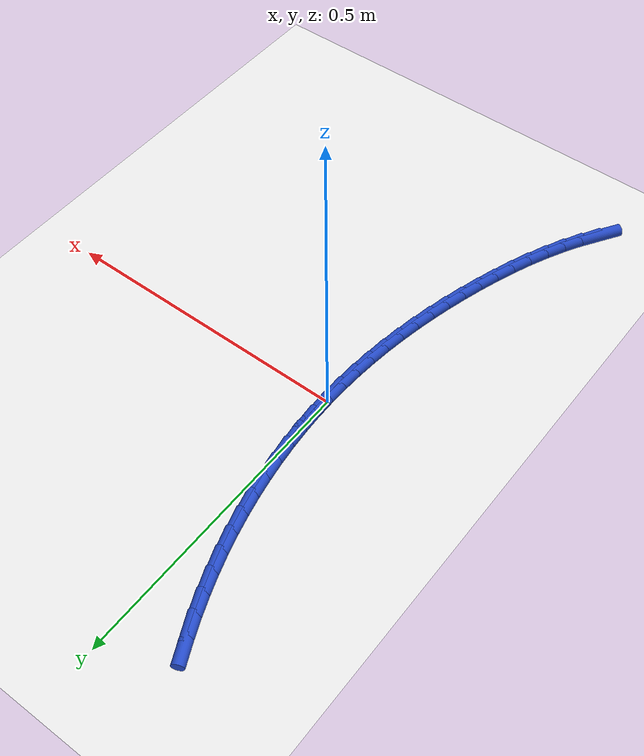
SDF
<sdf version="1.6">
 <world name="default">
  <model name="ground_plane">
   <static>1</static>
   <link name="link">
    <collision name="collision">
     <geometry><plane><normal>0 0 1</normal><size>100 100</size></plane></geometry>
     <surface><friction><ode><mu>100</mu><mu2>50</mu2></ode></friction></surface>
    </collision>
    <visual name="visual">
     <cast_shadows>0</cast_shadows>
     <geometry><plane><normal>0 0 1</normal><size>100 100</size></plane></geometry>
     <material>
      <script><uri>file://media/materials/scripts/gazebo.material</uri><name>Gazebo/WhiteGlow</name></script>
     </material>
    </visual>
   </link>
  </model>
  <model name="line">
   <link name="link_0">
    <pose>3.469446951953614e-18 -4.85722573273506e-17 0.01 0 1.57 -1.557743112268379</pose>
    <collision name="collision">
     <geometry><cylinder><radius>0.01</radius><length>0.08</length></cylinder></geometry>
    </collision>
    <visual name="visual">
     <material>
      <script><name>Gazebo/Blue</name><uri>file://media/materials/scripts/gazebo.material</uri></script>
     </material>
     <geometry><cylinder><radius>0.01</radius><length>0.08</length></cylinder></geometry>
    </visual>
   </link>
   <link name="link_1">
    <pose>-0.0004305091601614278 0.03297921044958965 0.01 0 1.57 -1.5230656228391661</pose>
    <collision name="collision">
     <geometry><cylinder><radius>0.01</radius><length>0.08</length></cylinder></geometry>
    </collision>
    <visual name="visual">
     <material>
      <script><name>Gazebo/Blue</name><uri>file://media/materials/scripts/gazebo.material</uri></script>
     </material>
     <geometry><cylinder><radius>0.01</radius><length>0.08</length></cylinder></geometry>
    </visual>
   </link>
   <link name="link_2">
    <pose>-0.0020077572388519137 0.06599883918657329 0.01 0 1.57 -1.4888375087633177</pose>
    <collision name="collision">
     <geometry><cylinder><radius>0.01</radius><length>0.08</length></cylinder></geometry>
    </collision>
    <visual name="visual">
     <material>
      <script><name>Gazebo/Blue</name><uri>file://media/materials/scripts/gazebo.material</uri></script>
     </material>
     <geometry><cylinder><radius>0.01</radius><length>0.08</length></cylinder></geometry>
    </visual>
   </link>
   <link name="link_3">
    <pose>-0.004718978539279356 0.09900502444685318 0.01 0 1.57 -1.4549674211429733</pose>
    <collision name="collision">
     <geometry><cylinder><radius>0.01</radius><length>0.08</length></cylinder></geometry>
    </collision>
    <visual name="visual">
     <material>
      <script><name>Gazebo/Blue</name><uri>file://media/materials/scripts/gazebo.material</uri></script>
     </material>
     <geometry><cylinder><radius>0.01</radius><length>0.08</length></cylinder></geometry>
    </visual>
   </link>
   <link name="link_4">
    <pose>-0.008551407364651669 0.1319439044663319 0.01 0 1.57 -1.4213636399968868</pose>
    <collision name="collision">
     <geometry><cylinder><radius>0.01</radius><length>0.08</length></cylinder></geometry>
    </collision>
    <visual name="visual">
     <material>
      <script><name>Gazebo/Blue</name><uri>file://media/materials/scripts/gazebo.material</uri></script>
     </material>
     <geometry><cylinder><radius>0.01</radius><length>0.08</length></cylinder></geometry>
    </visual>
   </link>
   <link name="link_5">
    <pose>-0.01349227801817674 0.16476161748091164 0.01 0 1.57 -1.3879341648001446</pose>
    <collision name="collision">
     <geometry><cylinder><radius>0.01</radius><length>0.08</length></cylinder></geometry>
    </collision>
    <visual name="visual">
     <material>
      <script><name>Gazebo/Blue</name><uri>file://media/materials/scripts/gazebo.material</uri></script>
     </material>
     <geometry><cylinder><radius>0.01</radius><length>0.08</length></cylinder></geometry>
    </visual>
   </link>
   <link name="link_6">
    <pose>-0.019528824803062478 0.19740430172649504 0.01 0 1.57 -1.3545867331646058</pose>
    <collision name="collision">
     <geometry><cylinder><radius>0.01</radius><length>0.08</length></cylinder></geometry>
    </collision>
    <visual name="visual">
     <material>
      <script><name>Gazebo/Blue</name><uri>file://media/materials/scripts/gazebo.material</uri></script>
     </material>
     <geometry><cylinder><radius>0.01</radius><length>0.08</length></cylinder></geometry>
    </visual>
   </link>
   <link name="link_7">
    <pose>-0.026648282022516796 0.22981809543898435 0.01 0 1.57 -1.3212287914505034</pose>
    <collision name="collision">
     <geometry><cylinder><radius>0.01</radius><length>0.08</length></cylinder></geometry>
    </collision>
    <visual name="visual">
     <material>
      <script><name>Gazebo/Blue</name><uri>file://media/materials/scripts/gazebo.material</uri></script>
     </material>
     <geometry><cylinder><radius>0.01</radius><length>0.08</length></cylinder></geometry>
    </visual>
   </link>
   <link name="link_8">
    <pose>-0.034837883979747575 0.26194913685428206 0.01 0 1.57 -1.2877674400181622</pose>
    <collision name="collision">
     <geometry><cylinder><radius>0.01</radius><length>0.08</length></cylinder></geometry>
    </collision>
    <visual name="visual">
     <material>
      <script><name>Gazebo/Blue</name><uri>file://media/materials/scripts/gazebo.material</uri></script>
     </material>
     <geometry><cylinder><radius>0.01</radius><length>0.08</length></cylinder></geometry>
    </visual>
   </link>
   <link name="link_9">
    <pose>-0.04408486497796271 0.2937435642082904 0.01 0 1.57 -1.2541393315151732</pose>
    <collision name="collision">
     <geometry><cylinder><radius>0.01</radius><length>0.08</length></cylinder></geometry>
    </collision>
    <visual name="visual">
     <material>
      <script><name>Gazebo/Blue</name><uri>file://media/materials/scripts/gazebo.material</uri></script>
     </material>
     <geometry><cylinder><radius>0.01</radius><length>0.08</length></cylinder></geometry>
    </visual>
   </link>
   <link name="link_10">
    <pose>-0.05437586806152327 0.3251488905540832 0.01 0 1.57 -1.2209216455504501</pose>
    <collision name="collision">
     <geometry><cylinder><radius>0.01</radius><length>0.08</length></cylinder></geometry>
    </collision>
    <visual name="visual">
     <material>
      <script><name>Gazebo/Blue</name><uri>file://media/materials/scripts/gazebo.material</uri></script>
     </material>
     <geometry><cylinder><radius>0.01</radius><length>0.08</length></cylinder></geometry>
    </visual>
   </link>
   <link name="link_11">
    <pose>-0.06568486695827308 0.35614208811305703 0.01 0 1.57 -1.1887616874989992</pose>
    <collision name="collision">
     <geometry><cylinder><radius>0.01</radius><length>0.08</length></cylinder></geometry>
    </collision>
    <visual name="visual">
     <material>
      <script><name>Gazebo/Blue</name><uri>file://media/materials/scripts/gazebo.material</uri></script>
     </material>
     <geometry><cylinder><radius>0.01</radius><length>0.08</length></cylinder></geometry>
    </visual>
   </link>
   <link name="link_12">
    <pose>-0.07797366198444956 0.386728435178298 0.01 0 1.57 -1.157730970514075</pose>
    <collision name="collision">
     <geometry><cylinder><radius>0.01</radius><length>0.08</length></cylinder></geometry>
    </collision>
    <visual name="visual">
     <material>
      <script><name>Gazebo/Blue</name><uri>file://media/materials/scripts/gazebo.material</uri></script>
     </material>
     <geometry><cylinder><radius>0.01</radius><length>0.08</length></cylinder></geometry>
    </visual>
   </link>
   <link name="link_13">
    <pose>-0.09120356142799732 0.4169143541254702 0.01 0 1.57 -1.1278642688266343</pose>
    <collision name="collision">
     <geometry><cylinder><radius>0.01</radius><length>0.08</length></cylinder></geometry>
    </collision>
    <visual name="visual">
     <material>
      <script><name>Gazebo/Blue</name><uri>file://media/materials/scripts/gazebo.material</uri></script>
     </material>
     <geometry><cylinder><radius>0.01</radius><length>0.08</length></cylinder></geometry>
    </visual>
   </link>
   <link name="link_183">
    <pose>-0.15169790505742486 -0.5378249704253627 0.01 0 1.57 0.9992526640507376</pose>
    <collision name="collision">
     <geometry><cylinder><radius>0.01</radius><length>0.08</length></cylinder></geometry>
    </collision>
    <visual name="visual">
     <material>
      <script><name>Gazebo/Blue</name><uri>file://media/materials/scripts/gazebo.material</uri></script>
     </material>
     <geometry><cylinder><radius>0.01</radius><length>0.08</length></cylinder></geometry>
    </visual>
   </link>
   <link name="link_184">
    <pose>-0.13398259106058338 -0.5102803022874369 0.01 0 1.57 1.0547544183782502</pose>
    <collision name="collision">
     <geometry><cylinder><radius>0.01</radius><length>0.08</length></cylinder></geometry>
    </collision>
    <visual name="visual">
     <material>
      <script><name>Gazebo/Blue</name><uri>file://media/materials/scripts/gazebo.material</uri></script>
     </material>
     <geometry><cylinder><radius>0.01</radius><length>0.08</length></cylinder></geometry>
    </visual>
   </link>
   <link name="link_185">
    <pose>-0.11766102144293561 -0.48151060190486183 0.01 0 1.57 1.104347239485901</pose>
    <collision name="collision">
     <geometry><cylinder><radius>0.01</radius><length>0.08</length></cylinder></geometry>
    </collision>
    <visual name="visual">
     <material>
      <script><name>Gazebo/Blue</name><uri>file://media/materials/scripts/gazebo.material</uri></script>
     </material>
     <geometry><cylinder><radius>0.01</radius><length>0.08</length></cylinder></geometry>
    </visual>
   </link>
   <link name="link_186">
    <pose>-0.10265009211147234 -0.4516978362146269 0.01 0 1.57 1.1484805684891168</pose>
    <collision name="collision">
     <geometry><cylinder><radius>0.01</radius><length>0.08</length></cylinder></geometry>
    </collision>
    <visual name="visual">
     <material>
      <script><name>Gazebo/Blue</name><uri>file://media/materials/scripts/gazebo.material</uri></script>
     </material>
     <geometry><cylinder><radius>0.01</radius><length>0.08</length></cylinder></geometry>
    </visual>
   </link>
   <link name="link_187">
    <pose>-0.0888666989731843 -0.4210239721537213 0.01 0 1.57 1.1876047967441006</pose>
    <collision name="collision">
     <geometry><cylinder><radius>0.01</radius><length>0.08</length></cylinder></geometry>
    </collision>
    <visual name="visual">
     <material>
      <script><name>Gazebo/Blue</name><uri>file://media/materials/scripts/gazebo.material</uri></script>
     </material>
     <geometry><cylinder><radius>0.01</radius><length>0.08</length></cylinder></geometry>
    </visual>
   </link>
   <link name="link_188">
    <pose>-0.07622773793506224 -0.3896709766591344 0.01 0 1.57 1.2221429966708037</pose>
    <collision name="collision">
     <geometry><cylinder><radius>0.01</radius><length>0.08</length></cylinder></geometry>
    </collision>
    <visual name="visual">
     <material>
      <script><name>Gazebo/Blue</name><uri>file://media/materials/scripts/gazebo.material</uri></script>
     </material>
     <geometry><cylinder><radius>0.01</radius><length>0.08</length></cylinder></geometry>
    </visual>
   </link>
   <link name="link_189">
    <pose>-0.06465010490409688 -0.35782081666785565 0.01 0 1.57 1.2524738232958783</pose>
    <collision name="collision">
     <geometry><cylinder><radius>0.01</radius><length>0.08</length></cylinder></geometry>
    </collision>
    <visual name="visual">
     <material>
      <script><name>Gazebo/Blue</name><uri>file://media/materials/scripts/gazebo.material</uri></script>
     </material>
     <geometry><cylinder><radius>0.01</radius><length>0.08</length></cylinder></geometry>
    </visual>
   </link>
   <link name="link_190">
    <pose>-0.05405069578727897 -0.32565545911687427 0.01 0 1.57 1.2790143080113954</pose>
    <collision name="collision">
     <geometry><cylinder><radius>0.01</radius><length>0.08</length></cylinder></geometry>
    </collision>
    <visual name="visual">
     <material>
      <script><name>Gazebo/Blue</name><uri>file://media/materials/scripts/gazebo.material</uri></script>
     </material>
     <geometry><cylinder><radius>0.01</radius><length>0.08</length></cylinder></geometry>
    </visual>
   </link>
   <link name="link_191">
    <pose>-0.044348598356946926 -0.29335330785739283 0.01 0 1.57 1.304282558240654</pose>
    <collision name="collision">
     <geometry><cylinder><radius>0.01</radius><length>0.08</length></cylinder></geometry>
    </collision>
    <visual name="visual">
     <material>
      <script><name>Gazebo/Blue</name><uri>file://media/materials/scripts/gazebo.material</uri></script>
     </material>
     <geometry><cylinder><radius>0.01</radius><length>0.08</length></cylinder></geometry>
    </visual>
   </link>
   <link name="link_192">
    <pose>-0.03551712994795988 -0.26100461142411585 0.01 0 1.57 1.3307072095008798</pose>
    <collision name="collision">
     <geometry><cylinder><radius>0.01</radius><length>0.08</length></cylinder></geometry>
    </collision>
    <visual name="visual">
     <material>
      <script><name>Gazebo/Blue</name><uri>file://media/materials/scripts/gazebo.material</uri></script>
     </material>
     <geometry><cylinder><radius>0.01</radius><length>0.08</length></cylinder></geometry>
    </visual>
   </link>
   <link name="link_193">
    <pose>-0.027586046592426184 -0.22860787187643675 0.01 0 1.57 1.358388821211743</pose>
    <collision name="collision">
     <geometry><cylinder><radius>0.01</radius><length>0.08</length></cylinder></geometry>
    </collision>
    <visual name="visual">
     <material>
      <script><name>Gazebo/Blue</name><uri>file://media/materials/scripts/gazebo.material</uri></script>
     </material>
     <geometry><cylinder><radius>0.01</radius><length>0.08</length></cylinder></geometry>
    </visual>
   </link>
   <link name="link_194">
    <pose>-0.02058773823557951 -0.19615730959722016 0.01 0 1.57 1.3873065759776688</pose>
    <collision name="collision">
     <geometry><cylinder><radius>0.01</radius><length>0.08</length></cylinder></geometry>
    </collision>
    <visual name="visual">
     <material>
      <script><name>Gazebo/Blue</name><uri>file://media/materials/scripts/gazebo.material</uri></script>
     </material>
     <geometry><cylinder><radius>0.01</radius><length>0.08</length></cylinder></geometry>
    </visual>
   </link>
   <link name="link_195">
    <pose>-0.014554594822653309 -0.16364714496932975 0.01 0 1.57 1.4174283841476043</pose>
    <collision name="collision">
     <geometry><cylinder><radius>0.01</radius><length>0.08</length></cylinder></geometry>
    </collision>
    <visual name="visual">
     <material>
      <script><name>Gazebo/Blue</name><uri>file://media/materials/scripts/gazebo.material</uri></script>
     </material>
     <geometry><cylinder><radius>0.01</radius><length>0.08</length></cylinder></geometry>
    </visual>
   </link>
   <link name="link_196">
    <pose>-0.009519006298881014 -0.13107159837562915 0.01 0 1.57 1.4487098260899685</pose>
    <collision name="collision">
     <geometry><cylinder><radius>0.01</radius><length>0.08</length></cylinder></geometry>
    </collision>
    <visual name="visual">
     <material>
      <script><name>Gazebo/Blue</name><uri>file://media/materials/scripts/gazebo.material</uri></script>
     </material>
     <geometry><cylinder><radius>0.01</radius><length>0.08</length></cylinder></geometry>
    </visual>
   </link>
   <link name="link_197">
    <pose>-0.005513362609496089 -0.09842489019898211 0.01 0 1.57 1.4810933091454832</pose>
    <collision name="collision">
     <geometry><cylinder><radius>0.01</radius><length>0.08</length></cylinder></geometry>
    </collision>
    <visual name="visual">
     <material>
      <script><name>Gazebo/Blue</name><uri>file://media/materials/scripts/gazebo.material</uri></script>
     </material>
     <geometry><cylinder><radius>0.01</radius><length>0.08</length></cylinder></geometry>
    </visual>
   </link>
   <link name="link_198">
    <pose>-0.002570053699731979 -0.06570124082225241 0.01 0 1.57 1.5145075209375174</pose>
    <collision name="collision">
     <geometry><cylinder><radius>0.01</radius><length>0.08</length></cylinder></geometry>
    </collision>
    <visual name="visual">
     <material>
      <script><name>Gazebo/Blue</name><uri>file://media/materials/scripts/gazebo.material</uri></script>
     </material>
     <geometry><cylinder><radius>0.01</radius><length>0.08</length></cylinder></geometry>
    </visual>
   </link>
   <link name="link_199">
    <pose>-0.0007214695148221283 -0.032894870628303735 0.01 0 1.57 1.548867258535543</pose>
    <collision name="collision">
     <geometry><cylinder><radius>0.01</radius><length>0.08</length></cylinder></geometry>
    </collision>
    <visual name="visual">
     <material>
      <script><name>Gazebo/Blue</name><uri>file://media/materials/scripts/gazebo.material</uri></script>
     </material>
     <geometry><cylinder><radius>0.01</radius><length>0.08</length></cylinder></geometry>
    </visual>
   </link>
   <link name="link_200">
    <pose>8.673617379884035e-18 1.6653345369377348e-16 0.01 0 1.57 -1.5575189507195641</pose>
    <collision name="collision">
     <geometry><cylinder><radius>0.01</radius><length>0.08</length></cylinder></geometry>
    </collision>
    <visual name="visual">
     <material>
      <script><name>Gazebo/Blue</name><uri>file://media/materials/scripts/gazebo.material</uri></script>
     </material>
     <geometry><cylinder><radius>0.01</radius><length>0.08</length></cylinder></geometry>
    </visual>
   </link>
   <link name="link_201">
    <pose>-0.00043803510049903946 0.03298915067979629 0.01 0 1.57 -1.5575189507195644</pose>
    <collision name="collision">
     <geometry><cylinder><radius>0.01</radius><length>0.08</length></cylinder></geometry>
    </collision>
    <visual name="visual">
     <material>
      <script><name>Gazebo/Blue</name><uri>file://media/materials/scripts/gazebo.material</uri></script>
     </material>
     <geometry><cylinder><radius>0.01</radius><length>0.08</length></cylinder></geometry>
    </visual>
   </link>
  </model>
 </world>
</sdf>
